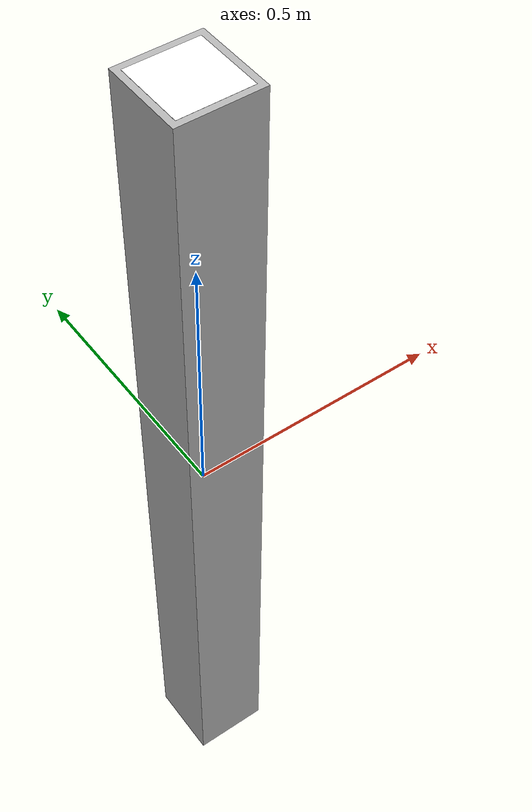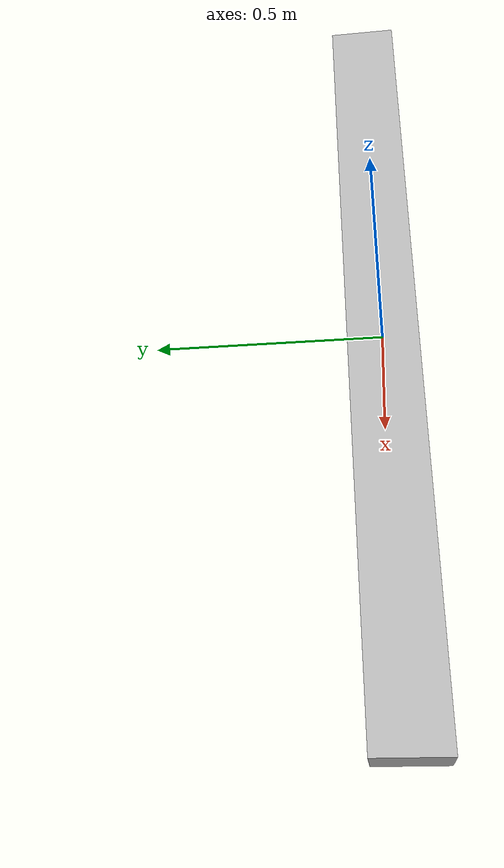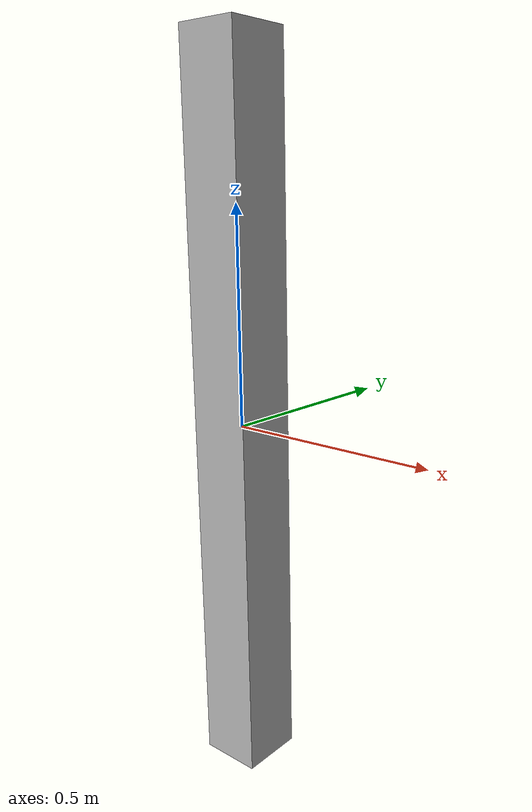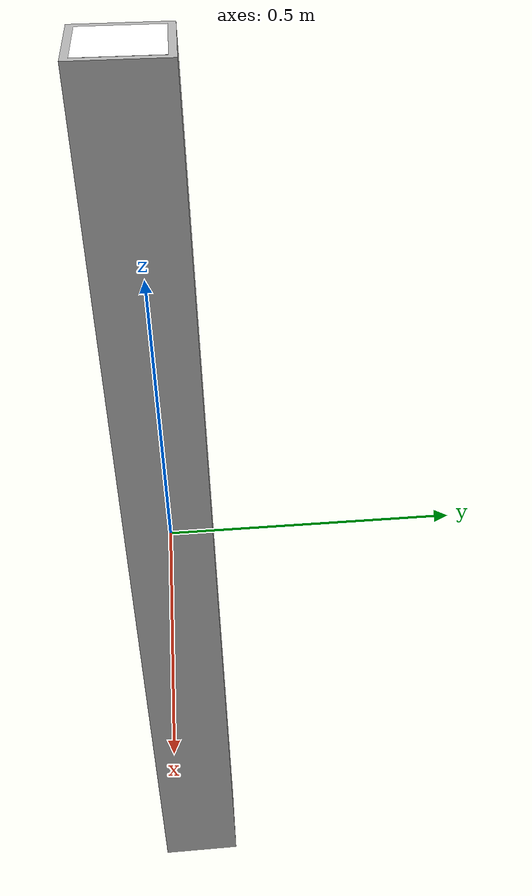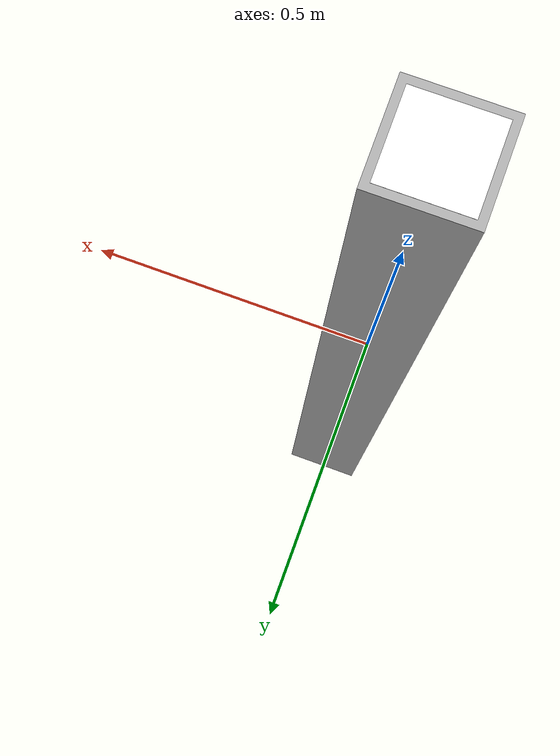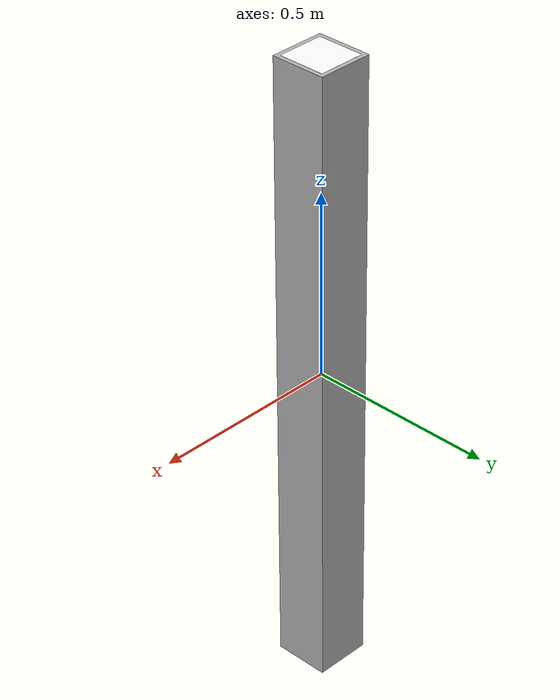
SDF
<?xml version='1.0' encoding='utf-8'?>
<sdf version='1.10'>
<model name='manometer'>
  <link name='manometer_link'>
    <enable_wind>false</enable_wind>
    <collision name='manometer_collision'>
      <geometry><box><size>0.15 0.15 1.7</size></box></geometry>
      <surface>
        <friction><ode/></friction>
        <bounce/>
        <contact/>
      </surface>
    </collision>
    <visual name='manometer_visual'>
      <geometry><box><size>0.15 0.15 1.7</size></box></geometry>
      <material>
        <diffuse>0.7 0.7 0.7 1</diffuse>
        <specular>1 1 1 1</specular>
      </material>
    </visual>
    <visual name='manometer_image'>
      <pose relative_to='manometer_collision'>0 0 0.8501 0 0 0</pose>
      <geometry><plane>
        <normal>0 0 1</normal>
        <size>0.127 0.127</size>
      </plane></geometry>
      <material>
        <diffuse>1 1 1 1</diffuse>
        <specular>1 1 1 1</specular>
        <pbr>
          <metal>
            <albedo_map>materials/textures/manometer.png</albedo_map>
            <metalness>0</metalness>
            <roughness>1</roughness>
          </metal>
        </pbr>
      </material>
    </visual>
  </link>
  <self_collide>false</self_collide>
  <static>true</static>
</model>
</sdf>
